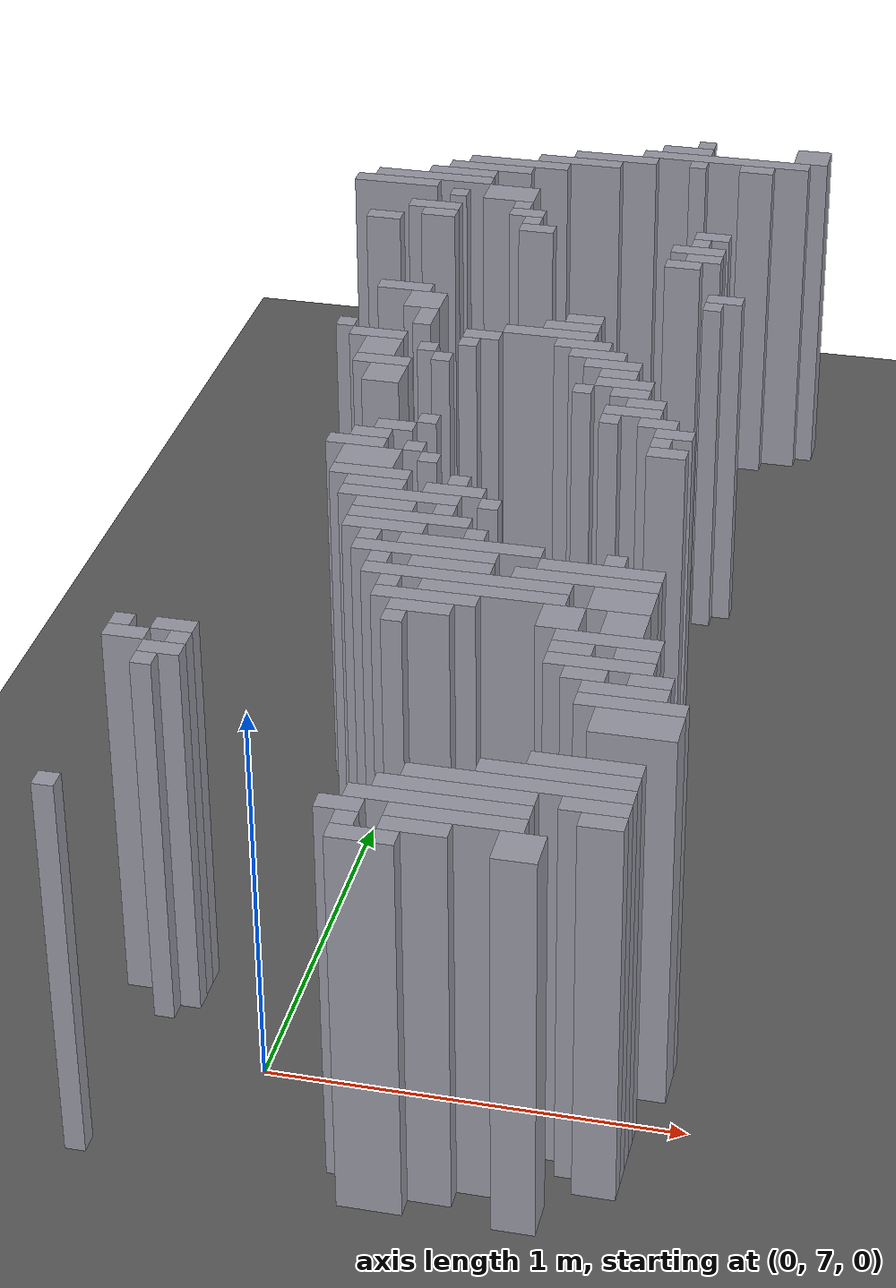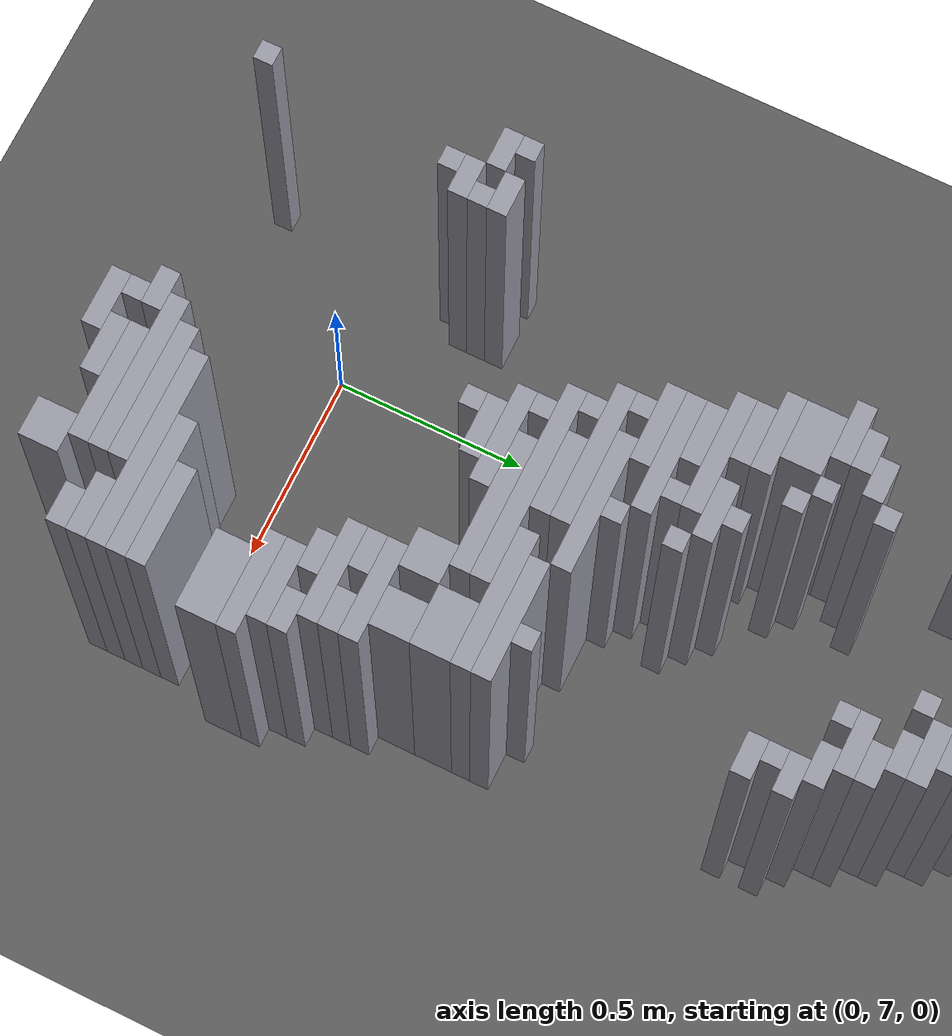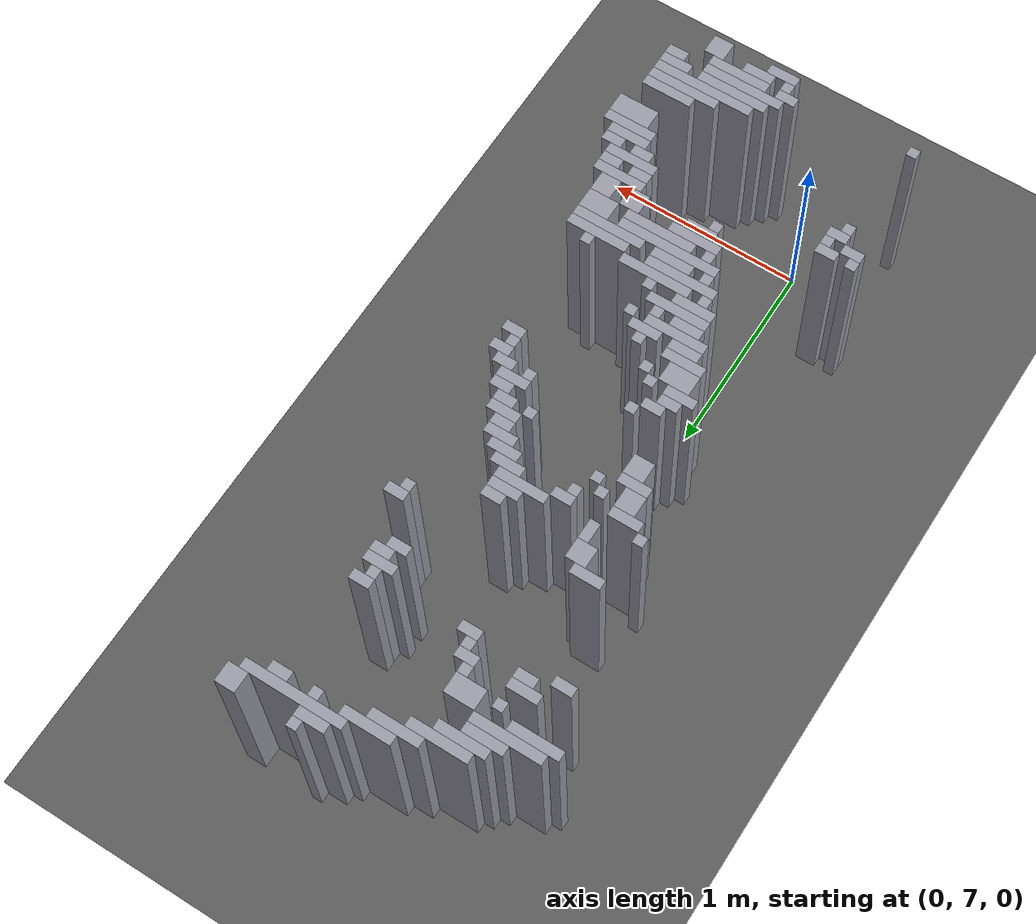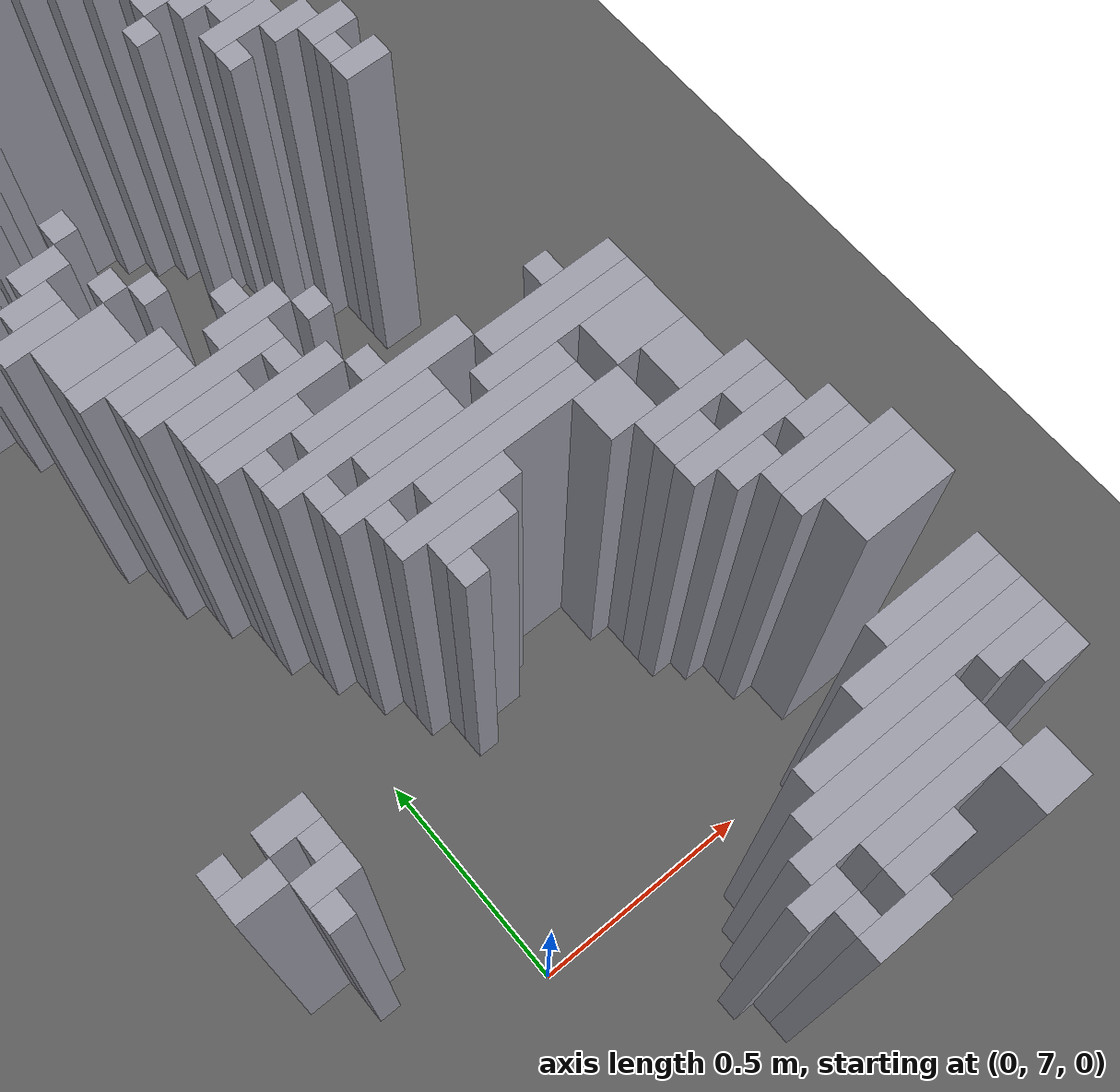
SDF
<sdf version="1.8">
 <world name="dimi">
  <model name="ground">
   <static>true</static>
   <link name="ground_link">
    <collision name="c"><geometry><plane><normal>0 0 1</normal><size>60 60</size></plane></geometry></collision>
    <visual name="v">
     <geometry><plane><normal>0 0 1</normal><size>60 60</size></plane></geometry>
     <material><ambient>0.3 0.3 0.3 1</ambient><diffuse>0.35 0.35 0.35 1</diffuse></material>
    </visual>
   </link>
  </model>
  <model name="walls">
   <static>true</static>
   <link name="wall_29">
    <pose>0.4580 10.3200 0.5000 0 0 0</pose>
    <collision name="c"><geometry><box><size>0.0500 0.0500 1.0000</size></box></geometry></collision>
    <visual name="v">
     <geometry><box><size>0.0500 0.0500 1.0000</size></box></geometry>
     <material><ambient>0.5 0.5 0.55 1</ambient><diffuse>0.6 0.6 0.65 1</diffuse></material>
    </visual>
   </link>
   <link name="wall_30">
    <pose>0.7830 10.2950 0.5000 0 0 0</pose>
    <collision name="c"><geometry><box><size>0.1000 0.1000 1.0000</size></box></geometry></collision>
    <visual name="v">
     <geometry><box><size>0.1000 0.1000 1.0000</size></box></geometry>
     <material><ambient>0.5 0.5 0.55 1</ambient><diffuse>0.6 0.6 0.65 1</diffuse></material>
    </visual>
   </link>
   <link name="wall_33">
    <pose>0.4080 10.2700 0.5000 0 0 0</pose>
    <collision name="c"><geometry><box><size>0.1500 0.0500 1.0000</size></box></geometry></collision>
    <visual name="v">
     <geometry><box><size>0.1500 0.0500 1.0000</size></box></geometry>
     <material><ambient>0.5 0.5 0.55 1</ambient><diffuse>0.6 0.6 0.65 1</diffuse></material>
    </visual>
   </link>
   <link name="wall_34">
    <pose>0.5330 10.2200 0.5000 0 0 0</pose>
    <collision name="c"><geometry><box><size>0.5000 0.0500 1.0000</size></box></geometry></collision>
    <visual name="v">
     <geometry><box><size>0.5000 0.0500 1.0000</size></box></geometry>
     <material><ambient>0.5 0.5 0.55 1</ambient><diffuse>0.6 0.6 0.65 1</diffuse></material>
    </visual>
   </link>
   <link name="wall_37">
    <pose>0.2080 10.1700 0.5000 0 0 0</pose>
    <collision name="c"><geometry><box><size>0.2500 0.0500 1.0000</size></box></geometry></collision>
    <visual name="v">
     <geometry><box><size>0.2500 0.0500 1.0000</size></box></geometry>
     <material><ambient>0.5 0.5 0.55 1</ambient><diffuse>0.6 0.6 0.65 1</diffuse></material>
    </visual>
   </link>
   <link name="wall_38">
    <pose>0.4580 10.1700 0.5000 0 0 0</pose>
    <collision name="c"><geometry><box><size>0.0500 0.0500 1.0000</size></box></geometry></collision>
    <visual name="v">
     <geometry><box><size>0.0500 0.0500 1.0000</size></box></geometry>
     <material><ambient>0.5 0.5 0.55 1</ambient><diffuse>0.6 0.6 0.65 1</diffuse></material>
    </visual>
   </link>
   <link name="wall_39">
    <pose>0.6330 10.1700 0.5000 0 0 0</pose>
    <collision name="c"><geometry><box><size>0.1000 0.0500 1.0000</size></box></geometry></collision>
    <visual name="v">
     <geometry><box><size>0.1000 0.0500 1.0000</size></box></geometry>
     <material><ambient>0.5 0.5 0.55 1</ambient><diffuse>0.6 0.6 0.65 1</diffuse></material>
    </visual>
   </link>
   <link name="wall_42">
    <pose>0.1080 10.1200 0.5000 0 0 0</pose>
    <collision name="c"><geometry><box><size>0.2500 0.0500 1.0000</size></box></geometry></collision>
    <visual name="v">
     <geometry><box><size>0.2500 0.0500 1.0000</size></box></geometry>
     <material><ambient>0.5 0.5 0.55 1</ambient><diffuse>0.6 0.6 0.65 1</diffuse></material>
    </visual>
   </link>
   <link name="wall_44">
    <pose>-0.0670 10.0700 0.5000 0 0 0</pose>
    <collision name="c"><geometry><box><size>0.3000 0.0500 1.0000</size></box></geometry></collision>
    <visual name="v">
     <geometry><box><size>0.3000 0.0500 1.0000</size></box></geometry>
     <material><ambient>0.5 0.5 0.55 1</ambient><diffuse>0.6 0.6 0.65 1</diffuse></material>
    </visual>
   </link>
   <link name="wall_48">
    <pose>-0.1420 10.0200 0.5000 0 0 0</pose>
    <collision name="c"><geometry><box><size>0.2500 0.0500 1.0000</size></box></geometry></collision>
    <visual name="v">
     <geometry><box><size>0.2500 0.0500 1.0000</size></box></geometry>
     <material><ambient>0.5 0.5 0.55 1</ambient><diffuse>0.6 0.6 0.65 1</diffuse></material>
    </visual>
   </link>
   <link name="wall_52">
    <pose>-0.2170 9.9700 0.5000 0 0 0</pose>
    <collision name="c"><geometry><box><size>0.2000 0.0500 1.0000</size></box></geometry></collision>
    <visual name="v">
     <geometry><box><size>0.2000 0.0500 1.0000</size></box></geometry>
     <material><ambient>0.5 0.5 0.55 1</ambient><diffuse>0.6 0.6 0.65 1</diffuse></material>
    </visual>
   </link>
   <link name="wall_54">
    <pose>-0.2920 9.9200 0.5000 0 0 0</pose>
    <collision name="c"><geometry><box><size>0.3500 0.0500 1.0000</size></box></geometry></collision>
    <visual name="v">
     <geometry><box><size>0.3500 0.0500 1.0000</size></box></geometry>
     <material><ambient>0.5 0.5 0.55 1</ambient><diffuse>0.6 0.6 0.65 1</diffuse></material>
    </visual>
   </link>
   <link name="wall_57">
    <pose>-0.3920 9.8700 0.5000 0 0 0</pose>
    <collision name="c"><geometry><box><size>0.2500 0.0500 1.0000</size></box></geometry></collision>
    <visual name="v">
     <geometry><box><size>0.2500 0.0500 1.0000</size></box></geometry>
     <material><ambient>0.5 0.5 0.55 1</ambient><diffuse>0.6 0.6 0.65 1</diffuse></material>
    </visual>
   </link>
   <link name="wall_58">
    <pose>-0.0420 9.8450 0.5000 0 0 0</pose>
    <collision name="c"><geometry><box><size>0.1500 0.1000 1.0000</size></box></geometry></collision>
    <visual name="v">
     <geometry><box><size>0.1500 0.1000 1.0000</size></box></geometry>
     <material><ambient>0.5 0.5 0.55 1</ambient><diffuse>0.6 0.6 0.65 1</diffuse></material>
    </visual>
   </link>
   <link name="wall_62">
    <pose>-0.1920 9.8200 0.5000 0 0 0</pose>
    <collision name="c"><geometry><box><size>0.0500 0.0500 1.0000</size></box></geometry></collision>
    <visual name="v">
     <geometry><box><size>0.0500 0.0500 1.0000</size></box></geometry>
     <material><ambient>0.5 0.5 0.55 1</ambient><diffuse>0.6 0.6 0.65 1</diffuse></material>
    </visual>
   </link>
   <link name="wall_65">
    <pose>0.0080 9.7700 0.5000 0 0 0</pose>
    <collision name="c"><geometry><box><size>0.0500 0.0500 1.0000</size></box></geometry></collision>
    <visual name="v">
     <geometry><box><size>0.0500 0.0500 1.0000</size></box></geometry>
     <material><ambient>0.5 0.5 0.55 1</ambient><diffuse>0.6 0.6 0.65 1</diffuse></material>
    </visual>
   </link>
   <link name="wall_68">
    <pose>-0.2420 9.7200 0.5000 0 0 0</pose>
    <collision name="c"><geometry><box><size>0.1500 0.0500 1.0000</size></box></geometry></collision>
    <visual name="v">
     <geometry><box><size>0.1500 0.0500 1.0000</size></box></geometry>
     <material><ambient>0.5 0.5 0.55 1</ambient><diffuse>0.6 0.6 0.65 1</diffuse></material>
    </visual>
   </link>
   <link name="wall_69">
    <pose>0.0330 9.7200 0.5000 0 0 0</pose>
    <collision name="c"><geometry><box><size>0.1000 0.0500 1.0000</size></box></geometry></collision>
    <visual name="v">
     <geometry><box><size>0.1000 0.0500 1.0000</size></box></geometry>
     <material><ambient>0.5 0.5 0.55 1</ambient><diffuse>0.6 0.6 0.65 1</diffuse></material>
    </visual>
   </link>
   <link name="wall_72">
    <pose>-0.2170 9.6700 0.5000 0 0 0</pose>
    <collision name="c"><geometry><box><size>0.1000 0.0500 1.0000</size></box></geometry></collision>
    <visual name="v">
     <geometry><box><size>0.1000 0.0500 1.0000</size></box></geometry>
     <material><ambient>0.5 0.5 0.55 1</ambient><diffuse>0.6 0.6 0.65 1</diffuse></material>
    </visual>
   </link>
   <link name="wall_73">
    <pose>0.0580 9.6700 0.5000 0 0 0</pose>
    <collision name="c"><geometry><box><size>0.0500 0.0500 1.0000</size></box></geometry></collision>
    <visual name="v">
     <geometry><box><size>0.0500 0.0500 1.0000</size></box></geometry>
     <material><ambient>0.5 0.5 0.55 1</ambient><diffuse>0.6 0.6 0.65 1</diffuse></material>
    </visual>
   </link>
   <link name="wall_74">
    <pose>0.5830 9.6700 0.5000 0 0 0</pose>
    <collision name="c"><geometry><box><size>0.1000 0.0500 1.0000</size></box></geometry></collision>
    <visual name="v">
     <geometry><box><size>0.1000 0.0500 1.0000</size></box></geometry>
     <material><ambient>0.5 0.5 0.55 1</ambient><diffuse>0.6 0.6 0.65 1</diffuse></material>
    </visual>
   </link>
   <link name="wall_77">
    <pose>-0.3670 9.6200 0.5000 0 0 0</pose>
    <collision name="c"><geometry><box><size>0.1000 0.0500 1.0000</size></box></geometry></collision>
    <visual name="v">
     <geometry><box><size>0.1000 0.0500 1.0000</size></box></geometry>
     <material><ambient>0.5 0.5 0.55 1</ambient><diffuse>0.6 0.6 0.65 1</diffuse></material>
    </visual>
   </link>
   <link name="wall_78">
    <pose>0.0830 9.6200 0.5000 0 0 0</pose>
    <collision name="c"><geometry><box><size>0.1000 0.0500 1.0000</size></box></geometry></collision>
    <visual name="v">
     <geometry><box><size>0.1000 0.0500 1.0000</size></box></geometry>
     <material><ambient>0.5 0.5 0.55 1</ambient><diffuse>0.6 0.6 0.65 1</diffuse></material>
    </visual>
   </link>
   <link name="wall_79">
    <pose>0.5580 9.6200 0.5000 0 0 0</pose>
    <collision name="c"><geometry><box><size>0.0500 0.0500 1.0000</size></box></geometry></collision>
    <visual name="v">
     <geometry><box><size>0.0500 0.0500 1.0000</size></box></geometry>
     <material><ambient>0.5 0.5 0.55 1</ambient><diffuse>0.6 0.6 0.65 1</diffuse></material>
    </visual>
   </link>
   <link name="wall_83">
    <pose>0.5580 9.5700 0.5000 0 0 0</pose>
    <collision name="c"><geometry><box><size>0.1500 0.0500 1.0000</size></box></geometry></collision>
    <visual name="v">
     <geometry><box><size>0.1500 0.0500 1.0000</size></box></geometry>
     <material><ambient>0.5 0.5 0.55 1</ambient><diffuse>0.6 0.6 0.65 1</diffuse></material>
    </visual>
   </link>
   <link name="wall_87">
    <pose>0.5830 9.5200 0.5000 0 0 0</pose>
    <collision name="c"><geometry><box><size>0.1000 0.0500 1.0000</size></box></geometry></collision>
    <visual name="v">
     <geometry><box><size>0.1000 0.0500 1.0000</size></box></geometry>
     <material><ambient>0.5 0.5 0.55 1</ambient><diffuse>0.6 0.6 0.65 1</diffuse></material>
    </visual>
   </link>
   <link name="wall_91">
    <pose>0.5330 9.4700 0.5000 0 0 0</pose>
    <collision name="c"><geometry><box><size>0.1000 0.0500 1.0000</size></box></geometry></collision>
    <visual name="v">
     <geometry><box><size>0.1000 0.0500 1.0000</size></box></geometry>
     <material><ambient>0.5 0.5 0.55 1</ambient><diffuse>0.6 0.6 0.65 1</diffuse></material>
    </visual>
   </link>
   <link name="wall_102">
    <pose>0.6830 9.2700 0.5000 0 0 0</pose>
    <collision name="c"><geometry><box><size>0.1000 0.0500 1.0000</size></box></geometry></collision>
    <visual name="v">
     <geometry><box><size>0.1000 0.0500 1.0000</size></box></geometry>
     <material><ambient>0.5 0.5 0.55 1</ambient><diffuse>0.6 0.6 0.65 1</diffuse></material>
    </visual>
   </link>
   <link name="wall_106">
    <pose>0.6580 9.2200 0.5000 0 0 0</pose>
    <collision name="c"><geometry><box><size>0.0500 0.0500 1.0000</size></box></geometry></collision>
    <visual name="v">
     <geometry><box><size>0.0500 0.0500 1.0000</size></box></geometry>
     <material><ambient>0.5 0.5 0.55 1</ambient><diffuse>0.6 0.6 0.65 1</diffuse></material>
    </visual>
   </link>
   <link name="wall_109">
    <pose>-0.1920 9.1700 0.5000 0 0 0</pose>
    <collision name="c"><geometry><box><size>0.1500 0.0500 1.0000</size></box></geometry></collision>
    <visual name="v">
     <geometry><box><size>0.1500 0.0500 1.0000</size></box></geometry>
     <material><ambient>0.5 0.5 0.55 1</ambient><diffuse>0.6 0.6 0.65 1</diffuse></material>
    </visual>
   </link>
   <link name="wall_112">
    <pose>-0.1170 9.0950 0.5000 0 0 0</pose>
    <collision name="c"><geometry><box><size>0.1000 0.1000 1.0000</size></box></geometry></collision>
    <visual name="v">
     <geometry><box><size>0.1000 0.1000 1.0000</size></box></geometry>
     <material><ambient>0.5 0.5 0.55 1</ambient><diffuse>0.6 0.6 0.65 1</diffuse></material>
    </visual>
   </link>
   <link name="wall_116">
    <pose>0.3330 9.0700 0.5000 0 0 0</pose>
    <collision name="c"><geometry><box><size>0.1000 0.0500 1.0000</size></box></geometry></collision>
    <visual name="v">
     <geometry><box><size>0.1000 0.0500 1.0000</size></box></geometry>
     <material><ambient>0.5 0.5 0.55 1</ambient><diffuse>0.6 0.6 0.65 1</diffuse></material>
    </visual>
   </link>
   <link name="wall_119">
    <pose>-0.0920 8.9950 0.5000 0 0 0</pose>
    <collision name="c"><geometry><box><size>0.0500 0.1000 1.0000</size></box></geometry></collision>
    <visual name="v">
     <geometry><box><size>0.0500 0.1000 1.0000</size></box></geometry>
     <material><ambient>0.5 0.5 0.55 1</ambient><diffuse>0.6 0.6 0.65 1</diffuse></material>
    </visual>
   </link>
   <link name="wall_120">
    <pose>0.3080 9.0200 0.5000 0 0 0</pose>
    <collision name="c"><geometry><box><size>0.1500 0.0500 1.0000</size></box></geometry></collision>
    <visual name="v">
     <geometry><box><size>0.1500 0.0500 1.0000</size></box></geometry>
     <material><ambient>0.5 0.5 0.55 1</ambient><diffuse>0.6 0.6 0.65 1</diffuse></material>
    </visual>
   </link>
   <link name="wall_125">
    <pose>0.2580 8.9700 0.5000 0 0 0</pose>
    <collision name="c"><geometry><box><size>0.2500 0.0500 1.0000</size></box></geometry></collision>
    <visual name="v">
     <geometry><box><size>0.2500 0.0500 1.0000</size></box></geometry>
     <material><ambient>0.5 0.5 0.55 1</ambient><diffuse>0.6 0.6 0.65 1</diffuse></material>
    </visual>
   </link>
   <link name="wall_128">
    <pose>-0.2920 8.9200 0.5000 0 0 0</pose>
    <collision name="c"><geometry><box><size>0.0500 0.0500 1.0000</size></box></geometry></collision>
    <visual name="v">
     <geometry><box><size>0.0500 0.0500 1.0000</size></box></geometry>
     <material><ambient>0.5 0.5 0.55 1</ambient><diffuse>0.6 0.6 0.65 1</diffuse></material>
    </visual>
   </link>
   <link name="wall_129">
    <pose>0.0830 8.9200 0.5000 0 0 0</pose>
    <collision name="c"><geometry><box><size>0.1000 0.0500 1.0000</size></box></geometry></collision>
    <visual name="v">
     <geometry><box><size>0.1000 0.0500 1.0000</size></box></geometry>
     <material><ambient>0.5 0.5 0.55 1</ambient><diffuse>0.6 0.6 0.65 1</diffuse></material>
    </visual>
   </link>
   <link name="wall_130">
    <pose>0.3580 8.9200 0.5000 0 0 0</pose>
    <collision name="c"><geometry><box><size>0.1500 0.0500 1.0000</size></box></geometry></collision>
    <visual name="v">
     <geometry><box><size>0.1500 0.0500 1.0000</size></box></geometry>
     <material><ambient>0.5 0.5 0.55 1</ambient><diffuse>0.6 0.6 0.65 1</diffuse></material>
    </visual>
   </link>
   <link name="wall_133">
    <pose>-0.1920 8.8700 0.5000 0 0 0</pose>
    <collision name="c"><geometry><box><size>0.1500 0.0500 1.0000</size></box></geometry></collision>
    <visual name="v">
     <geometry><box><size>0.1500 0.0500 1.0000</size></box></geometry>
     <material><ambient>0.5 0.5 0.55 1</ambient><diffuse>0.6 0.6 0.65 1</diffuse></material>
    </visual>
   </link>
   <link name="wall_134">
    <pose>0.0580 8.8700 0.5000 0 0 0</pose>
    <collision name="c"><geometry><box><size>0.0500 0.0500 1.0000</size></box></geometry></collision>
    <visual name="v">
     <geometry><box><size>0.0500 0.0500 1.0000</size></box></geometry>
     <material><ambient>0.5 0.5 0.55 1</ambient><diffuse>0.6 0.6 0.65 1</diffuse></material>
    </visual>
   </link>
   <link name="wall_135">
    <pose>0.4080 8.8700 0.5000 0 0 0</pose>
    <collision name="c"><geometry><box><size>0.1500 0.0500 1.0000</size></box></geometry></collision>
    <visual name="v">
     <geometry><box><size>0.1500 0.0500 1.0000</size></box></geometry>
     <material><ambient>0.5 0.5 0.55 1</ambient><diffuse>0.6 0.6 0.65 1</diffuse></material>
    </visual>
   </link>
   <link name="wall_137">
    <pose>-0.1670 8.7950 0.5000 0 0 0</pose>
    <collision name="c"><geometry><box><size>0.1000 0.1000 1.0000</size></box></geometry></collision>
    <visual name="v">
     <geometry><box><size>0.1000 0.1000 1.0000</size></box></geometry>
     <material><ambient>0.5 0.5 0.55 1</ambient><diffuse>0.6 0.6 0.65 1</diffuse></material>
    </visual>
   </link>
   <link name="wall_138">
    <pose>-0.0420 8.8200 0.5000 0 0 0</pose>
    <collision name="c"><geometry><box><size>0.0500 0.0500 1.0000</size></box></geometry></collision>
    <visual name="v">
     <geometry><box><size>0.0500 0.0500 1.0000</size></box></geometry>
     <material><ambient>0.5 0.5 0.55 1</ambient><diffuse>0.6 0.6 0.65 1</diffuse></material>
    </visual>
   </link>
   <link name="wall_139">
    <pose>0.4580 8.8200 0.5000 0 0 0</pose>
    <collision name="c"><geometry><box><size>0.1500 0.0500 1.0000</size></box></geometry></collision>
    <visual name="v">
     <geometry><box><size>0.1500 0.0500 1.0000</size></box></geometry>
     <material><ambient>0.5 0.5 0.55 1</ambient><diffuse>0.6 0.6 0.65 1</diffuse></material>
    </visual>
   </link>
   <link name="wall_142">
    <pose>0.0080 8.7700 0.5000 0 0 0</pose>
    <collision name="c"><geometry><box><size>0.0500 0.0500 1.0000</size></box></geometry></collision>
    <visual name="v">
     <geometry><box><size>0.0500 0.0500 1.0000</size></box></geometry>
     <material><ambient>0.5 0.5 0.55 1</ambient><diffuse>0.6 0.6 0.65 1</diffuse></material>
    </visual>
   </link>
   <link name="wall_143">
    <pose>0.4830 8.7700 0.5000 0 0 0</pose>
    <collision name="c"><geometry><box><size>0.1000 0.0500 1.0000</size></box></geometry></collision>
    <visual name="v">
     <geometry><box><size>0.1000 0.0500 1.0000</size></box></geometry>
     <material><ambient>0.5 0.5 0.55 1</ambient><diffuse>0.6 0.6 0.65 1</diffuse></material>
    </visual>
   </link>
   <link name="wall_147">
    <pose>-0.1420 8.7200 0.5000 0 0 0</pose>
    <collision name="c"><geometry><box><size>0.1500 0.0500 1.0000</size></box></geometry></collision>
    <visual name="v">
     <geometry><box><size>0.1500 0.0500 1.0000</size></box></geometry>
     <material><ambient>0.5 0.5 0.55 1</ambient><diffuse>0.6 0.6 0.65 1</diffuse></material>
    </visual>
   </link>
   <link name="wall_148">
    <pose>0.5080 8.7200 0.5000 0 0 0</pose>
    <collision name="c"><geometry><box><size>0.1500 0.0500 1.0000</size></box></geometry></collision>
    <visual name="v">
     <geometry><box><size>0.1500 0.0500 1.0000</size></box></geometry>
     <material><ambient>0.5 0.5 0.55 1</ambient><diffuse>0.6 0.6 0.65 1</diffuse></material>
    </visual>
   </link>
   <link name="wall_151">
    <pose>-0.1170 8.6450 0.5000 0 0 0</pose>
    <collision name="c"><geometry><box><size>0.1000 0.1000 1.0000</size></box></geometry></collision>
    <visual name="v">
     <geometry><box><size>0.1000 0.1000 1.0000</size></box></geometry>
     <material><ambient>0.5 0.5 0.55 1</ambient><diffuse>0.6 0.6 0.65 1</diffuse></material>
    </visual>
   </link>
   <link name="wall_152">
    <pose>0.4080 8.6700 0.5000 0 0 0</pose>
    <collision name="c"><geometry><box><size>0.0500 0.0500 1.0000</size></box></geometry></collision>
    <visual name="v">
     <geometry><box><size>0.0500 0.0500 1.0000</size></box></geometry>
     <material><ambient>0.5 0.5 0.55 1</ambient><diffuse>0.6 0.6 0.65 1</diffuse></material>
    </visual>
   </link>
   <link name="wall_153">
    <pose>0.5330 8.6700 0.5000 0 0 0</pose>
    <collision name="c"><geometry><box><size>0.1000 0.0500 1.0000</size></box></geometry></collision>
    <visual name="v">
     <geometry><box><size>0.1000 0.0500 1.0000</size></box></geometry>
     <material><ambient>0.5 0.5 0.55 1</ambient><diffuse>0.6 0.6 0.65 1</diffuse></material>
    </visual>
   </link>
   <link name="wall_157">
    <pose>0.5830 8.6200 0.5000 0 0 0</pose>
    <collision name="c"><geometry><box><size>0.1000 0.0500 1.0000</size></box></geometry></collision>
    <visual name="v">
     <geometry><box><size>0.1000 0.0500 1.0000</size></box></geometry>
     <material><ambient>0.5 0.5 0.55 1</ambient><diffuse>0.6 0.6 0.65 1</diffuse></material>
    </visual>
   </link>
   <link name="wall_163">
    <pose>0.5580 8.5700 0.5000 0 0 0</pose>
    <collision name="c"><geometry><box><size>0.1500 0.0500 1.0000</size></box></geometry></collision>
    <visual name="v">
     <geometry><box><size>0.1500 0.0500 1.0000</size></box></geometry>
     <material><ambient>0.5 0.5 0.55 1</ambient><diffuse>0.6 0.6 0.65 1</diffuse></material>
    </visual>
   </link>
   <link name="wall_169">
    <pose>0.5080 8.5200 0.5000 0 0 0</pose>
    <collision name="c"><geometry><box><size>0.0500 0.0500 1.0000</size></box></geometry></collision>
    <visual name="v">
     <geometry><box><size>0.0500 0.0500 1.0000</size></box></geometry>
     <material><ambient>0.5 0.5 0.55 1</ambient><diffuse>0.6 0.6 0.65 1</diffuse></material>
    </visual>
   </link>
   <link name="wall_170">
    <pose>0.6330 8.5200 0.5000 0 0 0</pose>
    <collision name="c"><geometry><box><size>0.1000 0.0500 1.0000</size></box></geometry></collision>
    <visual name="v">
     <geometry><box><size>0.1000 0.0500 1.0000</size></box></geometry>
     <material><ambient>0.5 0.5 0.55 1</ambient><diffuse>0.6 0.6 0.65 1</diffuse></material>
    </visual>
   </link>
   <link name="wall_172">
    <pose>0.6830 8.4700 0.5000 0 0 0</pose>
    <collision name="c"><geometry><box><size>0.1000 0.0500 1.0000</size></box></geometry></collision>
    <visual name="v">
     <geometry><box><size>0.1000 0.0500 1.0000</size></box></geometry>
     <material><ambient>0.5 0.5 0.55 1</ambient><diffuse>0.6 0.6 0.65 1</diffuse></material>
    </visual>
   </link>
   <link name="wall_177">
    <pose>0.0580 8.4200 0.5000 0 0 0</pose>
    <collision name="c"><geometry><box><size>0.0500 0.0500 1.0000</size></box></geometry></collision>
    <visual name="v">
     <geometry><box><size>0.0500 0.0500 1.0000</size></box></geometry>
     <material><ambient>0.5 0.5 0.55 1</ambient><diffuse>0.6 0.6 0.65 1</diffuse></material>
    </visual>
   </link>
   <link name="wall_178">
    <pose>0.6580 8.4200 0.5000 0 0 0</pose>
    <collision name="c"><geometry><box><size>0.0500 0.0500 1.0000</size></box></geometry></collision>
    <visual name="v">
     <geometry><box><size>0.0500 0.0500 1.0000</size></box></geometry>
     <material><ambient>0.5 0.5 0.55 1</ambient><diffuse>0.6 0.6 0.65 1</diffuse></material>
    </visual>
   </link>
   <link name="wall_184">
    <pose>-0.0170 8.3700 0.5000 0 0 0</pose>
    <collision name="c"><geometry><box><size>0.1000 0.0500 1.0000</size></box></geometry></collision>
    <visual name="v">
     <geometry><box><size>0.1000 0.0500 1.0000</size></box></geometry>
     <material><ambient>0.5 0.5 0.55 1</ambient><diffuse>0.6 0.6 0.65 1</diffuse></material>
    </visual>
   </link>
   <link name="wall_185">
    <pose>0.6830 8.3700 0.5000 0 0 0</pose>
    <collision name="c"><geometry><box><size>0.1000 0.0500 1.0000</size></box></geometry></collision>
    <visual name="v">
     <geometry><box><size>0.1000 0.0500 1.0000</size></box></geometry>
     <material><ambient>0.5 0.5 0.55 1</ambient><diffuse>0.6 0.6 0.65 1</diffuse></material>
    </visual>
   </link>
   <link name="wall_191">
    <pose>-0.0670 8.3200 0.5000 0 0 0</pose>
    <collision name="c"><geometry><box><size>0.1000 0.0500 1.0000</size></box></geometry></collision>
    <visual name="v">
     <geometry><box><size>0.1000 0.0500 1.0000</size></box></geometry>
     <material><ambient>0.5 0.5 0.55 1</ambient><diffuse>0.6 0.6 0.65 1</diffuse></material>
    </visual>
   </link>
   <link name="wall_197">
    <pose>-0.0920 8.2700 0.5000 0 0 0</pose>
    <collision name="c"><geometry><box><size>0.1500 0.0500 1.0000</size></box></geometry></collision>
    <visual name="v">
     <geometry><box><size>0.1500 0.0500 1.0000</size></box></geometry>
     <material><ambient>0.5 0.5 0.55 1</ambient><diffuse>0.6 0.6 0.65 1</diffuse></material>
    </visual>
   </link>
   <link name="wall_198">
    <pose>0.0580 8.2700 0.5000 0 0 0</pose>
    <collision name="c"><geometry><box><size>0.0500 0.0500 1.0000</size></box></geometry></collision>
    <visual name="v">
     <geometry><box><size>0.0500 0.0500 1.0000</size></box></geometry>
     <material><ambient>0.5 0.5 0.55 1</ambient><diffuse>0.6 0.6 0.65 1</diffuse></material>
    </visual>
   </link>
   <link name="wall_204">
    <pose>-0.0420 8.1950 0.5000 0 0 0</pose>
    <collision name="c"><geometry><box><size>0.1500 0.1000 1.0000</size></box></geometry></collision>
    <visual name="v">
     <geometry><box><size>0.1500 0.1000 1.0000</size></box></geometry>
     <material><ambient>0.5 0.5 0.55 1</ambient><diffuse>0.6 0.6 0.65 1</diffuse></material>
    </visual>
   </link>
   <link name="wall_205">
    <pose>0.1080 8.2200 0.5000 0 0 0</pose>
    <collision name="c"><geometry><box><size>0.0500 0.0500 1.0000</size></box></geometry></collision>
    <visual name="v">
     <geometry><box><size>0.0500 0.0500 1.0000</size></box></geometry>
     <material><ambient>0.5 0.5 0.55 1</ambient><diffuse>0.6 0.6 0.65 1</diffuse></material>
    </visual>
   </link>
   <link name="wall_219">
    <pose>-0.0170 8.1200 0.5000 0 0 0</pose>
    <collision name="c"><geometry><box><size>0.2000 0.0500 1.0000</size></box></geometry></collision>
    <visual name="v">
     <geometry><box><size>0.2000 0.0500 1.0000</size></box></geometry>
     <material><ambient>0.5 0.5 0.55 1</ambient><diffuse>0.6 0.6 0.65 1</diffuse></material>
    </visual>
   </link>
   <link name="wall_220">
    <pose>0.2080 8.1200 0.5000 0 0 0</pose>
    <collision name="c"><geometry><box><size>0.0500 0.0500 1.0000</size></box></geometry></collision>
    <visual name="v">
     <geometry><box><size>0.0500 0.0500 1.0000</size></box></geometry>
     <material><ambient>0.5 0.5 0.55 1</ambient><diffuse>0.6 0.6 0.65 1</diffuse></material>
    </visual>
   </link>
   <link name="wall_224">
    <pose>0.0080 8.0700 0.5000 0 0 0</pose>
    <collision name="c"><geometry><box><size>0.1500 0.0500 1.0000</size></box></geometry></collision>
    <visual name="v">
     <geometry><box><size>0.1500 0.0500 1.0000</size></box></geometry>
     <material><ambient>0.5 0.5 0.55 1</ambient><diffuse>0.6 0.6 0.65 1</diffuse></material>
    </visual>
   </link>
   <link name="wall_225">
    <pose>0.2080 8.0700 0.5000 0 0 0</pose>
    <collision name="c"><geometry><box><size>0.1500 0.0500 1.0000</size></box></geometry></collision>
    <visual name="v">
     <geometry><box><size>0.1500 0.0500 1.0000</size></box></geometry>
     <material><ambient>0.5 0.5 0.55 1</ambient><diffuse>0.6 0.6 0.65 1</diffuse></material>
    </visual>
   </link>
   <link name="wall_230">
    <pose>0.0830 8.0200 0.5000 0 0 0</pose>
    <collision name="c"><geometry><box><size>0.3000 0.0500 1.0000</size></box></geometry></collision>
    <visual name="v">
     <geometry><box><size>0.3000 0.0500 1.0000</size></box></geometry>
     <material><ambient>0.5 0.5 0.55 1</ambient><diffuse>0.6 0.6 0.65 1</diffuse></material>
    </visual>
   </link>
   <link name="wall_231">
    <pose>0.3080 8.0200 0.5000 0 0 0</pose>
    <collision name="c"><geometry><box><size>0.0500 0.0500 1.0000</size></box></geometry></collision>
    <visual name="v">
     <geometry><box><size>0.0500 0.0500 1.0000</size></box></geometry>
     <material><ambient>0.5 0.5 0.55 1</ambient><diffuse>0.6 0.6 0.65 1</diffuse></material>
    </visual>
   </link>
   <link name="wall_234">
    <pose>0.0580 7.9700 0.5000 0 0 0</pose>
    <collision name="c"><geometry><box><size>0.1500 0.0500 1.0000</size></box></geometry></collision>
    <visual name="v">
     <geometry><box><size>0.1500 0.0500 1.0000</size></box></geometry>
     <material><ambient>0.5 0.5 0.55 1</ambient><diffuse>0.6 0.6 0.65 1</diffuse></material>
    </visual>
   </link>
   <link name="wall_235">
    <pose>0.2080 7.9700 0.5000 0 0 0</pose>
    <collision name="c"><geometry><box><size>0.0500 0.0500 1.0000</size></box></geometry></collision>
    <visual name="v">
     <geometry><box><size>0.0500 0.0500 1.0000</size></box></geometry>
     <material><ambient>0.5 0.5 0.55 1</ambient><diffuse>0.6 0.6 0.65 1</diffuse></material>
    </visual>
   </link>
   <link name="wall_238">
    <pose>0.1330 7.9200 0.5000 0 0 0</pose>
    <collision name="c"><geometry><box><size>0.3000 0.0500 1.0000</size></box></geometry></collision>
    <visual name="v">
     <geometry><box><size>0.3000 0.0500 1.0000</size></box></geometry>
     <material><ambient>0.5 0.5 0.55 1</ambient><diffuse>0.6 0.6 0.65 1</diffuse></material>
    </visual>
   </link>
   <link name="wall_243">
    <pose>0.0830 7.8700 0.5000 0 0 0</pose>
    <collision name="c"><geometry><box><size>0.2000 0.0500 1.0000</size></box></geometry></collision>
    <visual name="v">
     <geometry><box><size>0.2000 0.0500 1.0000</size></box></geometry>
     <material><ambient>0.5 0.5 0.55 1</ambient><diffuse>0.6 0.6 0.65 1</diffuse></material>
    </visual>
   </link>
   <link name="wall_244">
    <pose>0.3080 7.8700 0.5000 0 0 0</pose>
    <collision name="c"><geometry><box><size>0.0500 0.0500 1.0000</size></box></geometry></collision>
    <visual name="v">
     <geometry><box><size>0.0500 0.0500 1.0000</size></box></geometry>
     <material><ambient>0.5 0.5 0.55 1</ambient><diffuse>0.6 0.6 0.65 1</diffuse></material>
    </visual>
   </link>
   <link name="wall_249">
    <pose>0.0580 7.8200 0.5000 0 0 0</pose>
    <collision name="c"><geometry><box><size>0.0500 0.0500 1.0000</size></box></geometry></collision>
    <visual name="v">
     <geometry><box><size>0.0500 0.0500 1.0000</size></box></geometry>
     <material><ambient>0.5 0.5 0.55 1</ambient><diffuse>0.6 0.6 0.65 1</diffuse></material>
    </visual>
   </link>
   <link name="wall_250">
    <pose>0.3080 7.8200 0.5000 0 0 0</pose>
    <collision name="c"><geometry><box><size>0.3500 0.0500 1.0000</size></box></geometry></collision>
    <visual name="v">
     <geometry><box><size>0.3500 0.0500 1.0000</size></box></geometry>
     <material><ambient>0.5 0.5 0.55 1</ambient><diffuse>0.6 0.6 0.65 1</diffuse></material>
    </visual>
   </link>
   <link name="wall_251">
    <pose>0.6580 7.8200 0.5000 0 0 0</pose>
    <collision name="c"><geometry><box><size>0.0500 0.0500 1.0000</size></box></geometry></collision>
    <visual name="v">
     <geometry><box><size>0.0500 0.0500 1.0000</size></box></geometry>
     <material><ambient>0.5 0.5 0.55 1</ambient><diffuse>0.6 0.6 0.65 1</diffuse></material>
    </visual>
   </link>
   <link name="wall_256">
    <pose>0.2080 7.7700 0.5000 0 0 0</pose>
    <collision name="c"><geometry><box><size>0.3500 0.0500 1.0000</size></box></geometry></collision>
    <visual name="v">
     <geometry><box><size>0.3500 0.0500 1.0000</size></box></geometry>
     <material><ambient>0.5 0.5 0.55 1</ambient><diffuse>0.6 0.6 0.65 1</diffuse></material>
    </visual>
   </link>
   <link name="wall_257">
    <pose>0.6330 7.7700 0.5000 0 0 0</pose>
    <collision name="c"><geometry><box><size>0.3000 0.0500 1.0000</size></box></geometry></collision>
    <visual name="v">
     <geometry><box><size>0.3000 0.0500 1.0000</size></box></geometry>
     <material><ambient>0.5 0.5 0.55 1</ambient><diffuse>0.6 0.6 0.65 1</diffuse></material>
    </visual>
   </link>
   <link name="wall_263">
    <pose>0.1080 7.7200 0.5000 0 0 0</pose>
    <collision name="c"><geometry><box><size>0.0500 0.0500 1.0000</size></box></geometry></collision>
    <visual name="v">
     <geometry><box><size>0.0500 0.0500 1.0000</size></box></geometry>
     <material><ambient>0.5 0.5 0.55 1</ambient><diffuse>0.6 0.6 0.65 1</diffuse></material>
    </visual>
   </link>
   <link name="wall_264">
    <pose>0.2830 7.7200 0.5000 0 0 0</pose>
    <collision name="c"><geometry><box><size>0.2000 0.0500 1.0000</size></box></geometry></collision>
    <visual name="v">
     <geometry><box><size>0.2000 0.0500 1.0000</size></box></geometry>
     <material><ambient>0.5 0.5 0.55 1</ambient><diffuse>0.6 0.6 0.65 1</diffuse></material>
    </visual>
   </link>
   <link name="wall_265">
    <pose>0.6080 7.7200 0.5000 0 0 0</pose>
    <collision name="c"><geometry><box><size>0.3500 0.0500 1.0000</size></box></geometry></collision>
    <visual name="v">
     <geometry><box><size>0.3500 0.0500 1.0000</size></box></geometry>
     <material><ambient>0.5 0.5 0.55 1</ambient><diffuse>0.6 0.6 0.65 1</diffuse></material>
    </visual>
   </link>
   <link name="wall_271">
    <pose>0.3330 7.6700 0.5000 0 0 0</pose>
    <collision name="c"><geometry><box><size>0.5000 0.0500 1.0000</size></box></geometry></collision>
    <visual name="v">
     <geometry><box><size>0.5000 0.0500 1.0000</size></box></geometry>
     <material><ambient>0.5 0.5 0.55 1</ambient><diffuse>0.6 0.6 0.65 1</diffuse></material>
    </visual>
   </link>
   <link name="wall_272">
    <pose>0.7080 7.6450 0.5000 0 0 0</pose>
    <collision name="c"><geometry><box><size>0.1500 0.1000 1.0000</size></box></geometry></collision>
    <visual name="v">
     <geometry><box><size>0.1500 0.1000 1.0000</size></box></geometry>
     <material><ambient>0.5 0.5 0.55 1</ambient><diffuse>0.6 0.6 0.65 1</diffuse></material>
    </visual>
   </link>
   <link name="wall_275">
    <pose>0.1580 7.6200 0.5000 0 0 0</pose>
    <collision name="c"><geometry><box><size>0.0500 0.0500 1.0000</size></box></geometry></collision>
    <visual name="v">
     <geometry><box><size>0.0500 0.0500 1.0000</size></box></geometry>
     <material><ambient>0.5 0.5 0.55 1</ambient><diffuse>0.6 0.6 0.65 1</diffuse></material>
    </visual>
   </link>
   <link name="wall_276">
    <pose>0.4080 7.6200 0.5000 0 0 0</pose>
    <collision name="c"><geometry><box><size>0.3500 0.0500 1.0000</size></box></geometry></collision>
    <visual name="v">
     <geometry><box><size>0.3500 0.0500 1.0000</size></box></geometry>
     <material><ambient>0.5 0.5 0.55 1</ambient><diffuse>0.6 0.6 0.65 1</diffuse></material>
    </visual>
   </link>
   <link name="wall_280">
    <pose>0.2580 7.5700 0.5000 0 0 0</pose>
    <collision name="c"><geometry><box><size>0.2500 0.0500 1.0000</size></box></geometry></collision>
    <visual name="v">
     <geometry><box><size>0.2500 0.0500 1.0000</size></box></geometry>
     <material><ambient>0.5 0.5 0.55 1</ambient><diffuse>0.6 0.6 0.65 1</diffuse></material>
    </visual>
   </link>
   <link name="wall_281">
    <pose>0.5830 7.5450 0.5000 0 0 0</pose>
    <collision name="c"><geometry><box><size>0.1000 0.1000 1.0000</size></box></geometry></collision>
    <visual name="v">
     <geometry><box><size>0.1000 0.1000 1.0000</size></box></geometry>
     <material><ambient>0.5 0.5 0.55 1</ambient><diffuse>0.6 0.6 0.65 1</diffuse></material>
    </visual>
   </link>
   <link name="wall_282">
    <pose>0.7330 7.5450 0.5000 0 0 0</pose>
    <collision name="c"><geometry><box><size>0.1000 0.1000 1.0000</size></box></geometry></collision>
    <visual name="v">
     <geometry><box><size>0.1000 0.1000 1.0000</size></box></geometry>
     <material><ambient>0.5 0.5 0.55 1</ambient><diffuse>0.6 0.6 0.65 1</diffuse></material>
    </visual>
   </link>
   <link name="wall_285">
    <pose>0.2580 7.5200 0.5000 0 0 0</pose>
    <collision name="c"><geometry><box><size>0.1500 0.0500 1.0000</size></box></geometry></collision>
    <visual name="v">
     <geometry><box><size>0.1500 0.0500 1.0000</size></box></geometry>
     <material><ambient>0.5 0.5 0.55 1</ambient><diffuse>0.6 0.6 0.65 1</diffuse></material>
    </visual>
   </link>
   <link name="wall_290">
    <pose>0.2080 7.4700 0.5000 0 0 0</pose>
    <collision name="c"><geometry><box><size>0.0500 0.0500 1.0000</size></box></geometry></collision>
    <visual name="v">
     <geometry><box><size>0.0500 0.0500 1.0000</size></box></geometry>
     <material><ambient>0.5 0.5 0.55 1</ambient><diffuse>0.6 0.6 0.65 1</diffuse></material>
    </visual>
   </link>
   <link name="wall_291">
    <pose>0.7080 7.4700 0.5000 0 0 0</pose>
    <collision name="c"><geometry><box><size>0.2500 0.0500 1.0000</size></box></geometry></collision>
    <visual name="v">
     <geometry><box><size>0.2500 0.0500 1.0000</size></box></geometry>
     <material><ambient>0.5 0.5 0.55 1</ambient><diffuse>0.6 0.6 0.65 1</diffuse></material>
    </visual>
   </link>
   <link name="wall_298">
    <pose>0.6330 7.4200 0.5000 0 0 0</pose>
    <collision name="c"><geometry><box><size>0.1000 0.0500 1.0000</size></box></geometry></collision>
    <visual name="v">
     <geometry><box><size>0.1000 0.0500 1.0000</size></box></geometry>
     <material><ambient>0.5 0.5 0.55 1</ambient><diffuse>0.6 0.6 0.65 1</diffuse></material>
    </visual>
   </link>
   <link name="wall_299">
    <pose>0.7830 7.4200 0.5000 0 0 0</pose>
    <collision name="c"><geometry><box><size>0.1000 0.0500 1.0000</size></box></geometry></collision>
    <visual name="v">
     <geometry><box><size>0.1000 0.0500 1.0000</size></box></geometry>
     <material><ambient>0.5 0.5 0.55 1</ambient><diffuse>0.6 0.6 0.65 1</diffuse></material>
    </visual>
   </link>
   <link name="wall_304">
    <pose>0.7080 7.3700 0.5000 0 0 0</pose>
    <collision name="c"><geometry><box><size>0.2500 0.0500 1.0000</size></box></geometry></collision>
    <visual name="v">
     <geometry><box><size>0.2500 0.0500 1.0000</size></box></geometry>
     <material><ambient>0.5 0.5 0.55 1</ambient><diffuse>0.6 0.6 0.65 1</diffuse></material>
    </visual>
   </link>
   <link name="wall_309">
    <pose>-0.3920 7.3200 0.5000 0 0 0</pose>
    <collision name="c"><geometry><box><size>0.0500 0.0500 1.0000</size></box></geometry></collision>
    <visual name="v">
     <geometry><box><size>0.0500 0.0500 1.0000</size></box></geometry>
     <material><ambient>0.5 0.5 0.55 1</ambient><diffuse>0.6 0.6 0.65 1</diffuse></material>
    </visual>
   </link>
   <link name="wall_310">
    <pose>-0.2670 7.3200 0.5000 0 0 0</pose>
    <collision name="c"><geometry><box><size>0.1000 0.0500 1.0000</size></box></geometry></collision>
    <visual name="v">
     <geometry><box><size>0.1000 0.0500 1.0000</size></box></geometry>
     <material><ambient>0.5 0.5 0.55 1</ambient><diffuse>0.6 0.6 0.65 1</diffuse></material>
    </visual>
   </link>
   <link name="wall_311">
    <pose>0.6830 7.3200 0.5000 0 0 0</pose>
    <collision name="c"><geometry><box><size>0.1000 0.0500 1.0000</size></box></geometry></collision>
    <visual name="v">
     <geometry><box><size>0.1000 0.0500 1.0000</size></box></geometry>
     <material><ambient>0.5 0.5 0.55 1</ambient><diffuse>0.6 0.6 0.65 1</diffuse></material>
    </visual>
   </link>
   <link name="wall_312">
    <pose>0.8330 7.3200 0.5000 0 0 0</pose>
    <collision name="c"><geometry><box><size>0.1000 0.0500 1.0000</size></box></geometry></collision>
    <visual name="v">
     <geometry><box><size>0.1000 0.0500 1.0000</size></box></geometry>
     <material><ambient>0.5 0.5 0.55 1</ambient><diffuse>0.6 0.6 0.65 1</diffuse></material>
    </visual>
   </link>
   <link name="wall_316">
    <pose>-0.3670 7.2700 0.5000 0 0 0</pose>
    <collision name="c"><geometry><box><size>0.1000 0.0500 1.0000</size></box></geometry></collision>
    <visual name="v">
     <geometry><box><size>0.1000 0.0500 1.0000</size></box></geometry>
     <material><ambient>0.5 0.5 0.55 1</ambient><diffuse>0.6 0.6 0.65 1</diffuse></material>
    </visual>
   </link>
   <link name="wall_317">
    <pose>-0.2420 7.2700 0.5000 0 0 0</pose>
    <collision name="c"><geometry><box><size>0.0500 0.0500 1.0000</size></box></geometry></collision>
    <visual name="v">
     <geometry><box><size>0.0500 0.0500 1.0000</size></box></geometry>
     <material><ambient>0.5 0.5 0.55 1</ambient><diffuse>0.6 0.6 0.65 1</diffuse></material>
    </visual>
   </link>
   <link name="wall_318">
    <pose>0.7830 7.2700 0.5000 0 0 0</pose>
    <collision name="c"><geometry><box><size>0.2000 0.0500 1.0000</size></box></geometry></collision>
    <visual name="v">
     <geometry><box><size>0.2000 0.0500 1.0000</size></box></geometry>
     <material><ambient>0.5 0.5 0.55 1</ambient><diffuse>0.6 0.6 0.65 1</diffuse></material>
    </visual>
   </link>
   <link name="wall_322">
    <pose>-0.2670 7.2200 0.5000 0 0 0</pose>
    <collision name="c"><geometry><box><size>0.1000 0.0500 1.0000</size></box></geometry></collision>
    <visual name="v">
     <geometry><box><size>0.1000 0.0500 1.0000</size></box></geometry>
     <material><ambient>0.5 0.5 0.55 1</ambient><diffuse>0.6 0.6 0.65 1</diffuse></material>
    </visual>
   </link>
   <link name="wall_323">
    <pose>0.8080 7.2200 0.5000 0 0 0</pose>
    <collision name="c"><geometry><box><size>0.2500 0.0500 1.0000</size></box></geometry></collision>
    <visual name="v">
     <geometry><box><size>0.2500 0.0500 1.0000</size></box></geometry>
     <material><ambient>0.5 0.5 0.55 1</ambient><diffuse>0.6 0.6 0.65 1</diffuse></material>
    </visual>
   </link>
   <link name="wall_329">
    <pose>-0.2920 7.1700 0.5000 0 0 0</pose>
    <collision name="c"><geometry><box><size>0.0500 0.0500 1.0000</size></box></geometry></collision>
    <visual name="v">
     <geometry><box><size>0.0500 0.0500 1.0000</size></box></geometry>
     <material><ambient>0.5 0.5 0.55 1</ambient><diffuse>0.6 0.6 0.65 1</diffuse></material>
    </visual>
   </link>
   <link name="wall_330">
    <pose>0.8330 7.1450 0.5000 0 0 0</pose>
    <collision name="c"><geometry><box><size>0.2000 0.1000 1.0000</size></box></geometry></collision>
    <visual name="v">
     <geometry><box><size>0.2000 0.1000 1.0000</size></box></geometry>
     <material><ambient>0.5 0.5 0.55 1</ambient><diffuse>0.6 0.6 0.65 1</diffuse></material>
    </visual>
   </link>
   <link name="wall_359">
    <pose>0.7580 6.9700 0.5000 0 0 0</pose>
    <collision name="c"><geometry><box><size>0.2500 0.0500 1.0000</size></box></geometry></collision>
    <visual name="v">
     <geometry><box><size>0.2500 0.0500 1.0000</size></box></geometry>
     <material><ambient>0.5 0.5 0.55 1</ambient><diffuse>0.6 0.6 0.65 1</diffuse></material>
    </visual>
   </link>
   <link name="wall_367">
    <pose>0.7080 6.9200 0.5000 0 0 0</pose>
    <collision name="c"><geometry><box><size>0.3500 0.0500 1.0000</size></box></geometry></collision>
    <visual name="v">
     <geometry><box><size>0.3500 0.0500 1.0000</size></box></geometry>
     <material><ambient>0.5 0.5 0.55 1</ambient><diffuse>0.6 0.6 0.65 1</diffuse></material>
    </visual>
   </link>
   <link name="wall_373">
    <pose>0.6330 6.8700 0.5000 0 0 0</pose>
    <collision name="c"><geometry><box><size>0.5000 0.0500 1.0000</size></box></geometry></collision>
    <visual name="v">
     <geometry><box><size>0.5000 0.0500 1.0000</size></box></geometry>
     <material><ambient>0.5 0.5 0.55 1</ambient><diffuse>0.6 0.6 0.65 1</diffuse></material>
    </visual>
   </link>
   <link name="wall_380">
    <pose>0.5080 6.8200 0.5000 0 0 0</pose>
    <collision name="c"><geometry><box><size>0.3500 0.0500 1.0000</size></box></geometry></collision>
    <visual name="v">
     <geometry><box><size>0.3500 0.0500 1.0000</size></box></geometry>
     <material><ambient>0.5 0.5 0.55 1</ambient><diffuse>0.6 0.6 0.65 1</diffuse></material>
    </visual>
   </link>
   <link name="wall_381">
    <pose>0.8080 6.8200 0.5000 0 0 0</pose>
    <collision name="c"><geometry><box><size>0.1500 0.0500 1.0000</size></box></geometry></collision>
    <visual name="v">
     <geometry><box><size>0.1500 0.0500 1.0000</size></box></geometry>
     <material><ambient>0.5 0.5 0.55 1</ambient><diffuse>0.6 0.6 0.65 1</diffuse></material>
    </visual>
   </link>
   <link name="wall_386">
    <pose>0.4830 6.7700 0.5000 0 0 0</pose>
    <collision name="c"><geometry><box><size>0.4000 0.0500 1.0000</size></box></geometry></collision>
    <visual name="v">
     <geometry><box><size>0.4000 0.0500 1.0000</size></box></geometry>
     <material><ambient>0.5 0.5 0.55 1</ambient><diffuse>0.6 0.6 0.65 1</diffuse></material>
    </visual>
   </link>
   <link name="wall_387">
    <pose>0.8330 6.7700 0.5000 0 0 0</pose>
    <collision name="c"><geometry><box><size>0.1000 0.0500 1.0000</size></box></geometry></collision>
    <visual name="v">
     <geometry><box><size>0.1000 0.0500 1.0000</size></box></geometry>
     <material><ambient>0.5 0.5 0.55 1</ambient><diffuse>0.6 0.6 0.65 1</diffuse></material>
    </visual>
   </link>
   <link name="wall_395">
    <pose>0.2830 6.7200 0.5000 0 0 0</pose>
    <collision name="c"><geometry><box><size>0.1000 0.0500 1.0000</size></box></geometry></collision>
    <visual name="v">
     <geometry><box><size>0.1000 0.0500 1.0000</size></box></geometry>
     <material><ambient>0.5 0.5 0.55 1</ambient><diffuse>0.6 0.6 0.65 1</diffuse></material>
    </visual>
   </link>
   <link name="wall_396">
    <pose>0.5330 6.7200 0.5000 0 0 0</pose>
    <collision name="c"><geometry><box><size>0.3000 0.0500 1.0000</size></box></geometry></collision>
    <visual name="v">
     <geometry><box><size>0.3000 0.0500 1.0000</size></box></geometry>
     <material><ambient>0.5 0.5 0.55 1</ambient><diffuse>0.6 0.6 0.65 1</diffuse></material>
    </visual>
   </link>
   <link name="wall_407">
    <pose>-0.3420 6.6700 0.5000 0 0 0</pose>
    <collision name="c"><geometry><box><size>0.0500 0.0500 1.0000</size></box></geometry></collision>
    <visual name="v">
     <geometry><box><size>0.0500 0.0500 1.0000</size></box></geometry>
     <material><ambient>0.5 0.5 0.55 1</ambient><diffuse>0.6 0.6 0.65 1</diffuse></material>
    </visual>
   </link>
   <link name="wall_408">
    <pose>0.3080 6.6700 0.5000 0 0 0</pose>
    <collision name="c"><geometry><box><size>0.0500 0.0500 1.0000</size></box></geometry></collision>
    <visual name="v">
     <geometry><box><size>0.0500 0.0500 1.0000</size></box></geometry>
     <material><ambient>0.5 0.5 0.55 1</ambient><diffuse>0.6 0.6 0.65 1</diffuse></material>
    </visual>
   </link>
   <link name="wall_409">
    <pose>0.4580 6.6700 0.5000 0 0 0</pose>
    <collision name="c"><geometry><box><size>0.1500 0.0500 1.0000</size></box></geometry></collision>
    <visual name="v">
     <geometry><box><size>0.1500 0.0500 1.0000</size></box></geometry>
     <material><ambient>0.5 0.5 0.55 1</ambient><diffuse>0.6 0.6 0.65 1</diffuse></material>
    </visual>
   </link>
   <link name="wall_410">
    <pose>0.6830 6.6450 0.5000 0 0 0</pose>
    <collision name="c"><geometry><box><size>0.1000 0.1000 1.0000</size></box></geometry></collision>
    <visual name="v">
     <geometry><box><size>0.1000 0.1000 1.0000</size></box></geometry>
     <material><ambient>0.5 0.5 0.55 1</ambient><diffuse>0.6 0.6 0.65 1</diffuse></material>
    </visual>
   </link>
   <link name="wall_420">
    <pose>0.3580 6.6200 0.5000 0 0 0</pose>
    <collision name="c"><geometry><box><size>0.1500 0.0500 1.0000</size></box></geometry></collision>
    <visual name="v">
     <geometry><box><size>0.1500 0.0500 1.0000</size></box></geometry>
     <material><ambient>0.5 0.5 0.55 1</ambient><diffuse>0.6 0.6 0.65 1</diffuse></material>
    </visual>
   </link>
  </model>
 </world>
</sdf>
